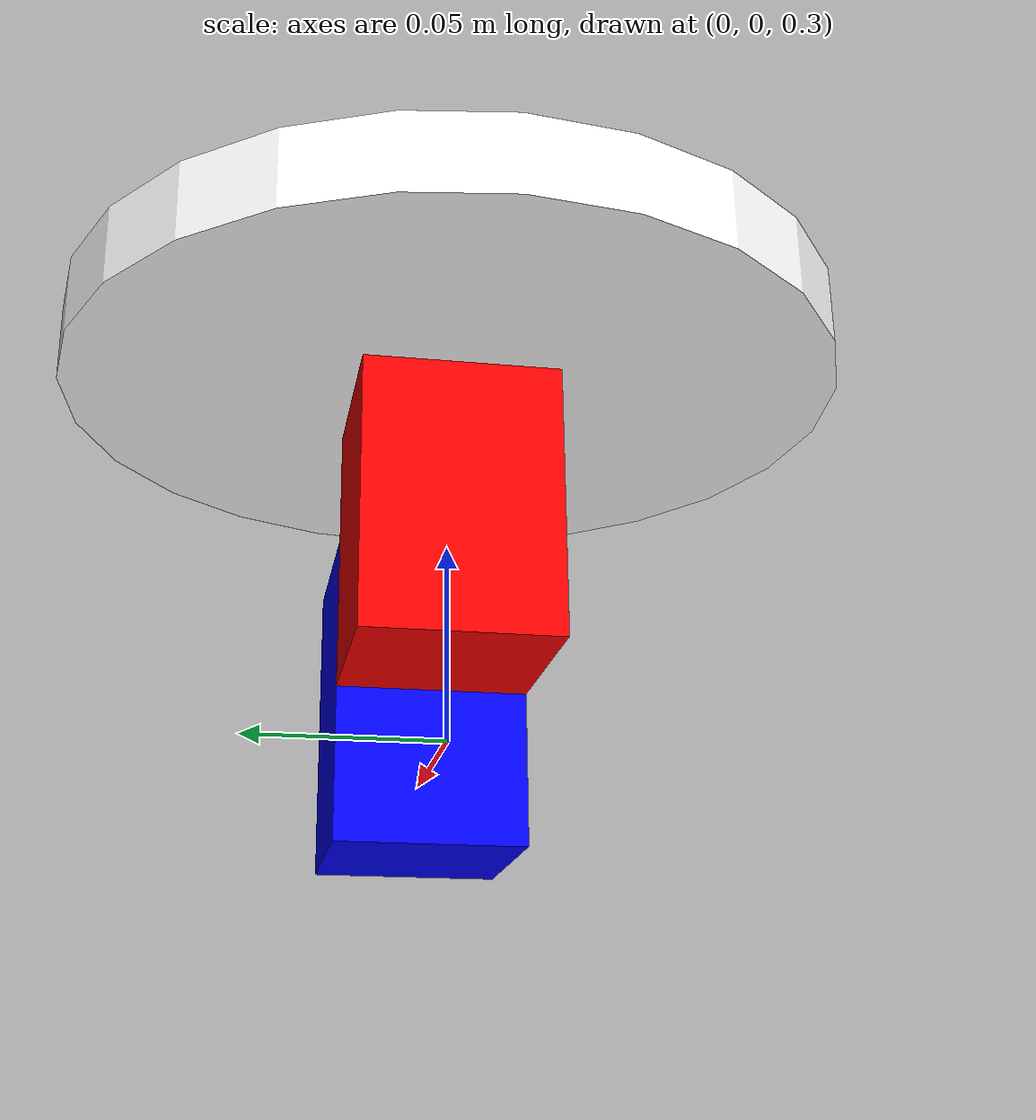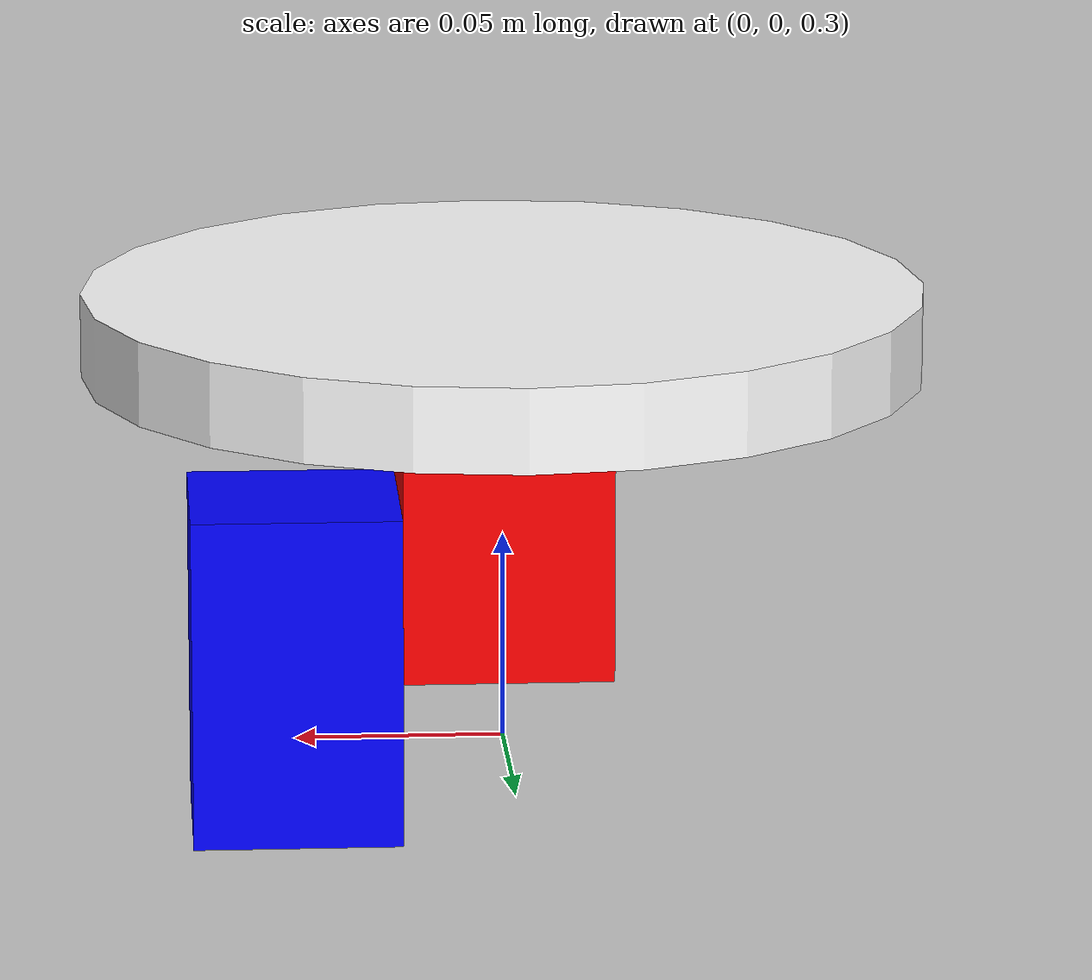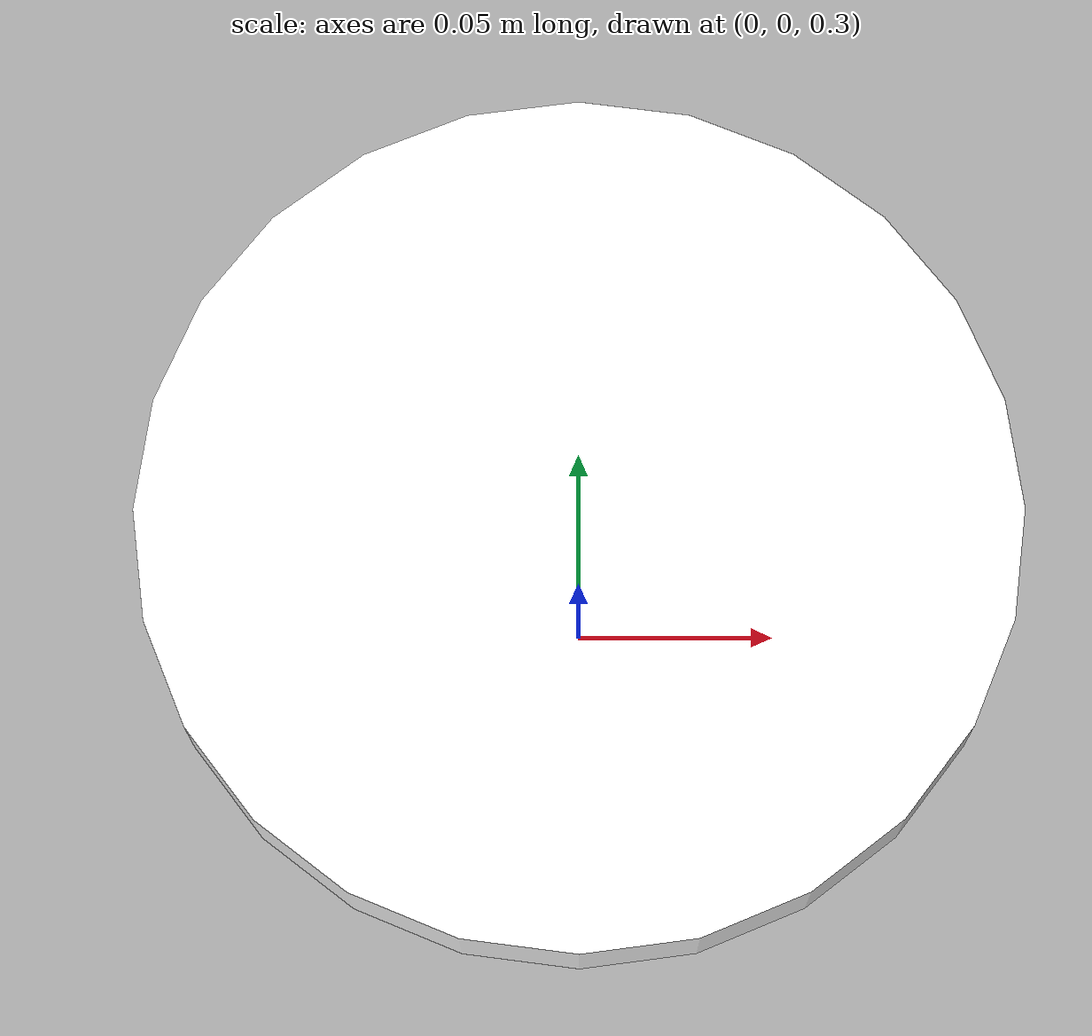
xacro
<?xml version="1.0"?>
<robot xmlns:xacro="http://www.ros.org/wiki/xacro" name="shooting_equip">
    <!-- Motor 1 and 2 variables w= width, l= length, b= breadth -->
    <xacro:property name="w" value="0.05"/>
    <xacro:property name="b" value="0.05"/>
    <xacro:property name="l" value="0.08"/>
    <!-- base dimensions -->
    <xacro:property name="radius" value="0.1"/>
    <xacro:property name="thickness" value="0.02"/>
    <xacro:property name="height" value="0.4"/>
    <!-- dummy link for rviz -->
    <link name="base_footprint"/>
    <!--_______Links ______-->
    <!-- base link -->
    <link name="base">
        <visual>
            <geometry>
                <cylinder length="${thickness}" radius="${radius}"/>
            </geometry>
            <material name="">
                <color rgba="1.0 1.0 1.0 1.0"/>
            </material>
        </visual>
   </link>
   <!-- shoulder motor -->
   <link name="shoulder_motor">
        <visual>
            <geometry>
                <box size="${w} ${b} ${l}"/>
            </geometry>
            <material name="">
                <color rgba="1.0 0.0 0.0 1.0"/>
            </material>
        </visual>
    </link>
    <!-- elbow motor -->
   <link name="elbow_motor">
        <visual>
            <geometry>
                <box size="${w} ${b} ${l}"/>
            </geometry>
            <material name="">
                <color rgba="0.0 0.0 1.0 1.0"/>
            </material>
        </visual>
    </link>
    <!-- _______Joints________ -->
    <!-- base_footprint to base joint -->
    <joint name="base_footprint_to_base" type="fixed">
        <parent link="base_footprint"/>
        <child link="base"/>
        <origin xyz="0.0 0.0 ${height}" rpy="0.0 0.0 0.0"/>
    </joint>
    <!-- base to shoulder (motor 1) joint -->
    <joint name="base_to_shoulder" type="continuous">
        <parent link="base"/>
        <child link="shoulder_motor"/>
        <origin xyz="0.0 0.0 ${-l/2}" rpy="0.0 0.0 0.0"/>
        <axis xyz="0.0 0.0 1.0"/>
    </joint>
     <!-- shoulder to elbow (motor 1 to motor 2) joint -->
     <joint name="shoulder_to_elbow" type="continuous">
        <parent link="shoulder_motor"/>
        <child link="elbow_motor"/>
        <origin xyz="${w} 0.0 ${-l/2}" rpy="0.0 0.0 0.0"/>
        <axis xyz="1.0 0.0 0.0"/>
    </joint>
</robot>
